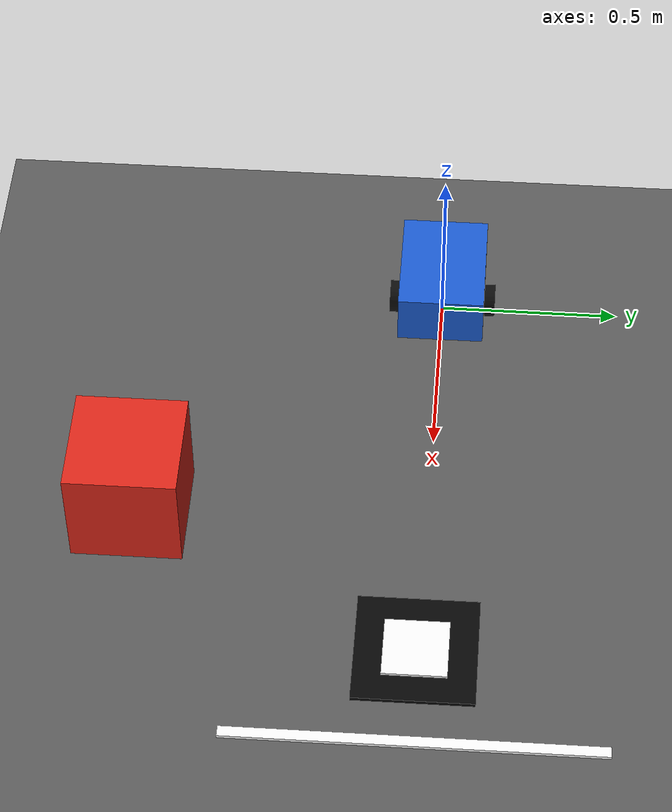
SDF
<?xml version="1.0" ?>
<sdf version="1.9">
  <world name="parking_world">
    <physics name="physics" type="ignored">
      <max_step_size>0.001</max_step_size>
      <real_time_factor>1.0</real_time_factor>
    </physics>

    <plugin filename="gz-sim-physics-system" name="gz::sim::systems::Physics"/>
    <plugin filename="gz-sim-user-commands-system" name="gz::sim::systems::UserCommands"/>
    <plugin filename="gz-sim-scene-broadcaster-system" name="gz::sim::systems::SceneBroadcaster"/>

    <light type="directional" name="sun">
      <cast_shadows>true</cast_shadows>
      <pose>0 0 10 0 0 0</pose>
      <diffuse>0.8 0.8 0.8 1</diffuse>
      <specular>0.2 0.2 0.2 1</specular>
      <direction>-0.5 0.1 -0.9</direction>
    </light>

    <model name="ground_plane">
      <static>true</static>
      <link name="link">
        <collision name="collision">
          <geometry><plane><normal>0 0 1</normal><size>20 20</size></plane></geometry>
        </collision>
        <visual name="visual">
          <geometry><plane><normal>0 0 1</normal><size>20 20</size></plane></geometry>
          <material><ambient>0.35 0.35 0.35 1</ambient><diffuse>0.35 0.35 0.35 1</diffuse></material>
        </visual>
      </link>
    </model>

    <model name="parking_marker">
      <static>true</static>
      <pose>1.50 0 0.01 0 0 0</pose>
      <link name="link">
        <visual name="white_line">
          <pose>0 0 0.005 0 0 0</pose>
          <geometry><box><size>0.03 1.00 0.01</size></box></geometry>
          <material><ambient>0.95 0.95 0.95 1</ambient><diffuse>0.95 0.95 0.95 1</diffuse></material>
        </visual>
      </link>
    </model>

    <model name="apriltag_0_simulated">
      <static>true</static>
      <pose>1.50 0 0.42 0 1.5708 0</pose>
      <link name="link">
        <visual name="black_tag_board">
          <geometry><box><size>0.01 0.30 0.30</size></box></geometry>
          <material><ambient>0.02 0.02 0.02 1</ambient><diffuse>0.02 0.02 0.02 1</diffuse></material>
        </visual>
        <visual name="white_tag_center">
          <pose>-0.006 0 0 0 0 0</pose>
          <geometry><box><size>0.012 0.16 0.16</size></box></geometry>
          <material><ambient>0.95 0.95 0.95 1</ambient><diffuse>0.95 0.95 0.95 1</diffuse></material>
        </visual>
      </link>
    </model>

    <model name="safety_obstacle">
      <static>true</static>
      <pose>0.8 -0.8 0.15 0 0 0</pose>
      <link name="link">
        <collision name="collision"><geometry><box><size>0.30 0.30 0.30</size></box></geometry></collision>
        <visual name="visual">
          <geometry><box><size>0.30 0.30 0.30</size></box></geometry>
          <material><ambient>0.85 0.15 0.10 1</ambient><diffuse>0.85 0.15 0.10 1</diffuse></material>
        </visual>
      </link>
    </model>

    <model name="mock_mobile_robot">
      <pose>0 0 0 0 0 0</pose>
      <link name="base_link">
        <pose>0 0 0.12 0 0 0</pose>
        <inertial>
          <mass>3.0</mass>
          <inertia><ixx>0.025</ixx><iyy>0.035</iyy><izz>0.045</izz></inertia>
        </inertial>
        <collision name="collision">
          <geometry><box><size>0.32 0.24 0.15</size></box></geometry>
        </collision>
        <visual name="visual">
          <geometry><box><size>0.32 0.24 0.15</size></box></geometry>
          <material><ambient>0.10 0.35 0.80 1</ambient><diffuse>0.10 0.35 0.80 1</diffuse></material>
        </visual>
      </link>

      <link name="left_wheel">
        <pose>0 0.135 0.045 1.5708 0 0</pose>
        <inertial><mass>0.15</mass><inertia><ixx>0.0002</ixx><iyy>0.0002</iyy><izz>0.0002</izz></inertia></inertial>
        <collision name="collision">
          <geometry><cylinder><radius>0.045</radius><length>0.030</length></cylinder></geometry>
          <surface><friction><ode><mu>1.2</mu><mu2>1.2</mu2></ode></friction></surface>
        </collision>
        <visual name="visual">
          <geometry><cylinder><radius>0.045</radius><length>0.030</length></cylinder></geometry>
          <material><ambient>0.05 0.05 0.05 1</ambient><diffuse>0.05 0.05 0.05 1</diffuse></material>
        </visual>
      </link>
      <joint name="left_wheel_joint" type="revolute">
        <parent>base_link</parent><child>left_wheel</child>
        <axis><xyz>0 1 0</xyz><limit><lower>-1e16</lower><upper>1e16</upper></limit></axis>
      </joint>

      <link name="right_wheel">
        <pose>0 -0.135 0.045 1.5708 0 0</pose>
        <inertial><mass>0.15</mass><inertia><ixx>0.0002</ixx><iyy>0.0002</iyy><izz>0.0002</izz></inertia></inertial>
        <collision name="collision">
          <geometry><cylinder><radius>0.045</radius><length>0.030</length></cylinder></geometry>
          <surface><friction><ode><mu>1.2</mu><mu2>1.2</mu2></ode></friction></surface>
        </collision>
        <visual name="visual">
          <geometry><cylinder><radius>0.045</radius><length>0.030</length></cylinder></geometry>
          <material><ambient>0.05 0.05 0.05 1</ambient><diffuse>0.05 0.05 0.05 1</diffuse></material>
        </visual>
      </link>
      <joint name="right_wheel_joint" type="revolute">
        <parent>base_link</parent><child>right_wheel</child>
        <axis><xyz>0 1 0</xyz><limit><lower>-1e16</lower><upper>1e16</upper></limit></axis>
      </joint>

      <link name="caster">
        <pose>-0.12 0 0.03 0 0 0</pose>
        <inertial><mass>0.05</mass><inertia><ixx>0.00005</ixx><iyy>0.00005</iyy><izz>0.00005</izz></inertia></inertial>
        <collision name="collision"><geometry><sphere><radius>0.03</radius></sphere></geometry></collision>
        <visual name="visual">
          <geometry><sphere><radius>0.03</radius></sphere></geometry>
          <material><ambient>0.05 0.05 0.05 1</ambient><diffuse>0.05 0.05 0.05 1</diffuse></material>
        </visual>
      </link>
      <joint name="caster_joint" type="ball"><parent>base_link</parent><child>caster</child></joint>

      <plugin filename="gz-sim-diff-drive-system" name="gz::sim::systems::DiffDrive">
        <left_joint>left_wheel_joint</left_joint>
        <right_joint>right_wheel_joint</right_joint>
        <wheel_separation>0.27</wheel_separation>
        <wheel_radius>0.045</wheel_radius>
        <odom_publish_frequency>50</odom_publish_frequency>
        <topic>/model/mock_mobile_robot/cmd_vel</topic>
        <odom_topic>/model/mock_mobile_robot/odometry</odom_topic>
        <frame_id>odom</frame_id>
        <child_frame_id>base_link</child_frame_id>
      </plugin>
    </model>
  </world>
</sdf>
